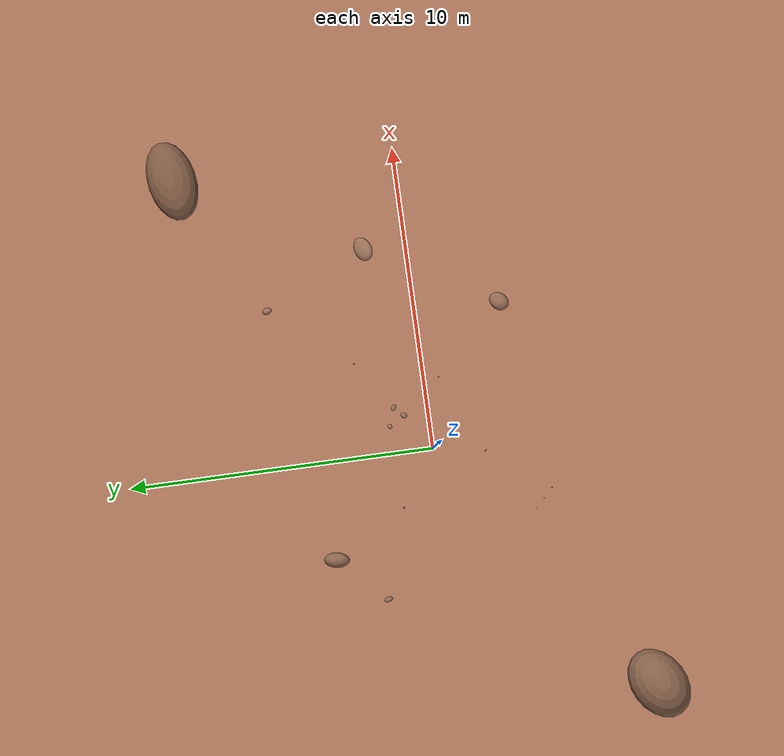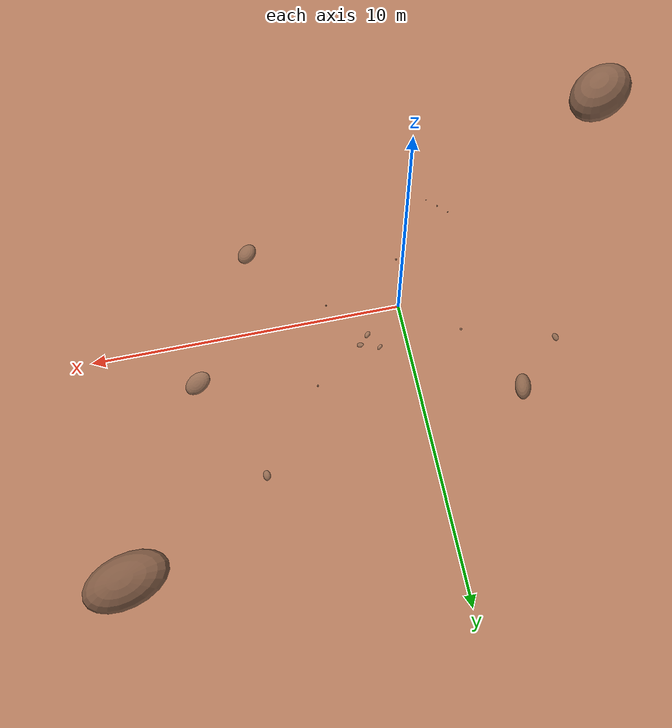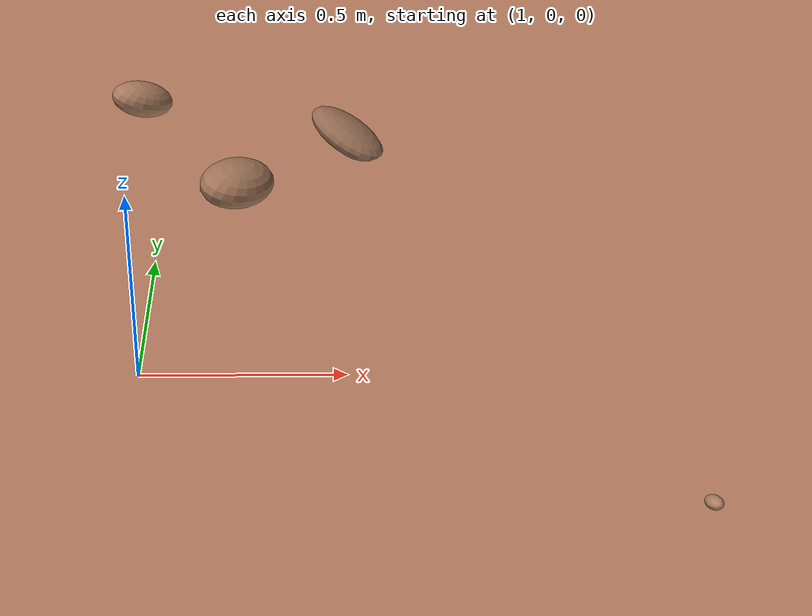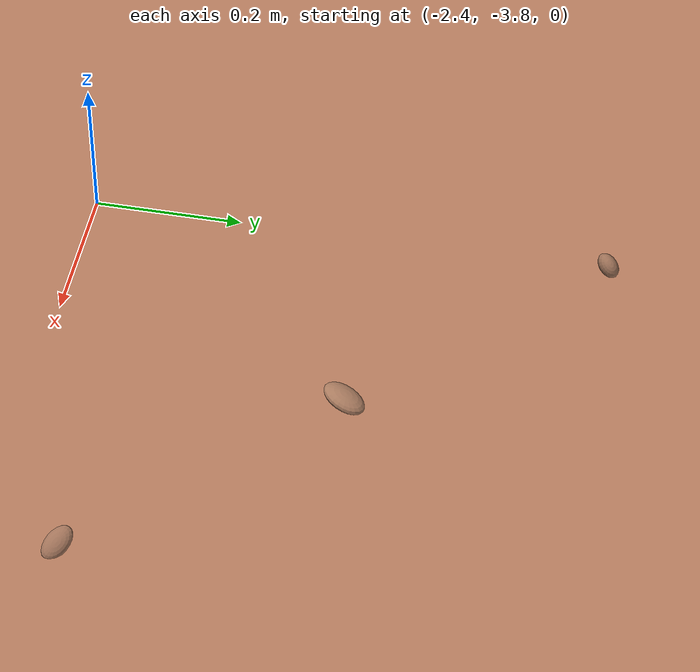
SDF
<?xml version="1.0" ?>
<sdf version="1.8">
  <world name="realistic_mars_surface">

    <physics name="mars_physics" type="ignored">
      <max_step_size>0.001</max_step_size>
      <real_time_factor>1.0</real_time_factor>
    </physics>

    <plugin filename="libignition-gazebo-physics-system.so" name="ignition::gazebo::systems::Physics">
    </plugin>
    <plugin filename="libignition-gazebo-user-commands-system.so" name="ignition::gazebo::systems::UserCommands">
    </plugin>
    <plugin filename="libignition-gazebo-scene-broadcaster-system.so" name="ignition::gazebo::systems::SceneBroadcaster">
    </plugin>
    <plugin filename="libignition-gazebo-sensors-system.so" name="ignition::gazebo::systems::Sensors">
      <render_engine>ogre2</render_engine>
    </plugin>

    <!-- Mars gravity -->
    <gravity>0 0 -3.71</gravity>

    <!-- Mars atmosphere -->
    <scene>
      <ambient>0.45 0.35 0.25 1.0</ambient>
      <background>0.9 0.65 0.4 1.0</background>
      <shadows>true</shadows>
      <fog>
        <color>0.95 0.7 0.45 1.0</color>
        <type>linear</type>
        <start>15</start>
        <end>200</end>
        <density>0.03</density>
      </fog>
    </scene>

    <!-- Mars sun -->
    <light type="directional" name="mars_sun">
      <cast_shadows>true</cast_shadows>
      <pose>80 40 60 0 0 0</pose>
      <diffuse>0.95 0.75 0.55 1</diffuse>
      <specular>0.4 0.3 0.2 1</specular>
      <direction>-0.5 -0.3 -0.8</direction>
    </light>

    <!-- Mars terrain base -->
    <model name="mars_surface">
      <static>true</static>
      <link name="surface_link">
        <collision name="surface_collision">
          <geometry>
            <plane>
              <normal>0 0 1</normal>
              <size>300 300</size>
            </plane>
          </geometry>
          <surface>
            <friction>
              <ode>
                <mu>0.9</mu>
                <mu2>0.9</mu2>
              </ode>
            </friction>
          </surface>
        </collision>
        <visual name="surface_visual">
          <geometry>
            <plane>
              <normal>0 0 1</normal>
              <size>300 300</size>
            </plane>
          </geometry>
          <material>
            <ambient>0.6 0.42 0.32 1</ambient>
            <diffuse>0.7 0.48 0.36 1</diffuse>
            <specular>0.02 0.02 0.02 1</specular>
          </material>
        </visual>
      </link>
    </model>

    <!-- Realistic rock field using mesh-like shapes -->
    <!-- Small weathered rocks cluster 1 -->
    <model name="rock_cluster_1">
      <static>true</static>

      <!-- Irregular small rock 1 -->
      <link name="small_rock_1a">
        <pose>1.2 0.8 0.06 0.3 0.2 0.8</pose>
        <collision name="small_rock_1a_collision">
          <geometry>
            <ellipsoid>
              <radii>0.12 0.08 0.06</radii>
            </ellipsoid>
          </geometry>
        </collision>
        <visual name="small_rock_1a_visual">
          <geometry>
            <ellipsoid>
              <radii>0.12 0.08 0.06</radii>
            </ellipsoid>
          </geometry>
          <material>
            <ambient>0.52 0.38 0.28 1</ambient>
            <diffuse>0.62 0.45 0.34 1</diffuse>
            <specular>0.05 0.05 0.05 1</specular>
          </material>
        </visual>
      </link>

      <link name="small_rock_1b">
        <pose>1.5 1.1 0.04 0.5 0.1 1.2</pose>
        <collision name="small_rock_1b_collision">
          <geometry>
            <ellipsoid>
              <radii>0.08 0.12 0.04</radii>
            </ellipsoid>
          </geometry>
        </collision>
        <visual name="small_rock_1b_visual">
          <geometry>
            <ellipsoid>
              <radii>0.08 0.12 0.04</radii>
            </ellipsoid>
          </geometry>
          <material>
            <ambient>0.48 0.35 0.26 1</ambient>
            <diffuse>0.58 0.42 0.32 1</diffuse>
            <specular>0.04 0.04 0.04 1</specular>
          </material>
        </visual>
      </link>

      <link name="small_rock_1c">
        <pose>0.9 1.3 0.05 0.2 0.4 0.6</pose>
        <collision name="small_rock_1c_collision">
          <geometry>
            <ellipsoid>
              <radii>0.10 0.06 0.05</radii>
            </ellipsoid>
          </geometry>
        </collision>
        <visual name="small_rock_1c_visual">
          <geometry>
            <ellipsoid>
              <radii>0.10 0.06 0.05</radii>
            </ellipsoid>
          </geometry>
          <material>
            <ambient>0.55 0.40 0.30 1</ambient>
            <diffuse>0.65 0.47 0.36 1</diffuse>
            <specular>0.06 0.06 0.06 1</specular>
          </material>
        </visual>
      </link>
    </model>

    <!-- Scattered pebble field -->
    <model name="pebble_field_1">
      <static>true</static>

      <!-- Tiny pebbles -->
      <link name="pebble_1">
        <pose>2.3 -0.5 0.015 0.1 0.3 1.8</pose>
        <collision name="pebble_1_collision">
          <geometry>
            <ellipsoid>
              <radii>0.03 0.02 0.015</radii>
            </ellipsoid>
          </geometry>
        </collision>
        <visual name="pebble_1_visual">
          <geometry>
            <ellipsoid>
              <radii>0.03 0.02 0.015</radii>
            </ellipsoid>
          </geometry>
          <material>
            <ambient>0.58 0.42 0.32 1</ambient>
            <diffuse>0.68 0.50 0.38 1</diffuse>
          </material>
        </visual>
      </link>

      <link name="pebble_2">
        <pose>-1.8 1.2 0.02 0.4 0.1 2.3</pose>
        <collision name="pebble_2_collision">
          <geometry>
            <ellipsoid>
              <radii>0.04 0.03 0.02</radii>
            </ellipsoid>
          </geometry>
        </collision>
        <visual name="pebble_2_visual">
          <geometry>
            <ellipsoid>
              <radii>0.04 0.03 0.02</radii>
            </ellipsoid>
          </geometry>
          <material>
            <ambient>0.50 0.36 0.27 1</ambient>
            <diffuse>0.60 0.43 0.33 1</diffuse>
          </material>
        </visual>
      </link>

      <link name="pebble_3">
        <pose>-0.3 -1.7 0.012 0.2 0.5 0.9</pose>
        <collision name="pebble_3_collision">
          <geometry>
            <ellipsoid>
              <radii>0.025 0.04 0.012</radii>
            </ellipsoid>
          </geometry>
        </collision>
        <visual name="pebble_3_visual">
          <geometry>
            <ellipsoid>
              <radii>0.025 0.04 0.012</radii>
            </ellipsoid>
          </geometry>
          <material>
            <ambient>0.54 0.39 0.29 1</ambient>
            <diffuse>0.64 0.46 0.35 1</diffuse>
          </material>
        </visual>
      </link>

      <link name="pebble_4">
        <pose>3.1 2.2 0.018 0.6 0.2 1.5</pose>
        <collision name="pebble_4_collision">
          <geometry>
            <ellipsoid>
              <radii>0.035 0.025 0.018</radii>
            </ellipsoid>
          </geometry>
        </collision>
        <visual name="pebble_4_visual">
          <geometry>
            <ellipsoid>
              <radii>0.035 0.025 0.018</radii>
            </ellipsoid>
          </geometry>
          <material>
            <ambient>0.52 0.37 0.28 1</ambient>
            <diffuse>0.62 0.44 0.34 1</diffuse>
          </material>
        </visual>
      </link>
    </model>

    <!-- Medium weathered rocks -->
    <model name="medium_rocks_natural">
      <static>true</static>

      <link name="med_rock_1">
        <pose>4.5 -2.8 0.18 0.15 0.25 0.7</pose>
        <collision name="med_rock_1_collision">
          <geometry>
            <ellipsoid>
              <radii>0.35 0.28 0.18</radii>
            </ellipsoid>
          </geometry>
        </collision>
        <visual name="med_rock_1_visual">
          <geometry>
            <ellipsoid>
              <radii>0.35 0.28 0.18</radii>
            </ellipsoid>
          </geometry>
          <material>
            <ambient>0.47 0.34 0.25 1</ambient>
            <diffuse>0.57 0.41 0.31 1</diffuse>
            <specular>0.08 0.08 0.08 1</specular>
          </material>
        </visual>
      </link>

      <link name="med_rock_2">
        <pose>-3.2 3.6 0.22 0.3 0.1 1.4</pose>
        <collision name="med_rock_2_collision">
          <geometry>
            <ellipsoid>
              <radii>0.42 0.25 0.22</radii>
            </ellipsoid>
          </geometry>
        </collision>
        <visual name="med_rock_2_visual">
          <geometry>
            <ellipsoid>
              <radii>0.42 0.25 0.22</radii>
            </ellipsoid>
          </geometry>
          <material>
            <ambient>0.44 0.32 0.23 1</ambient>
            <diffuse>0.54 0.39 0.29 1</diffuse>
            <specular>0.07 0.07 0.07 1</specular>
          </material>
        </visual>
      </link>

      <link name="med_rock_3">
        <pose>6.8 1.4 0.15 0.4 0.3 2.1</pose>
        <collision name="med_rock_3_collision">
          <geometry>
            <ellipsoid>
              <radii>0.30 0.45 0.15</radii>
            </ellipsoid>
          </geometry>
        </collision>
        <visual name="med_rock_3_visual">
          <geometry>
            <ellipsoid>
              <radii>0.30 0.45 0.15</radii>
            </ellipsoid>
          </geometry>
          <material>
            <ambient>0.49 0.36 0.27 1</ambient>
            <diffuse>0.59 0.43 0.33 1</diffuse>
            <specular>0.09 0.09 0.09 1</specular>
          </material>
        </visual>
      </link>
    </model>

    <!-- Large weathered boulders -->
    <model name="large_weathered_boulders">
      <static>true</static>

      <link name="large_boulder_1">
        <pose>-8.5 -6.2 0.8 0.1 0.2 0.5</pose>
        <collision name="large_boulder_1_collision">
          <geometry>
            <ellipsoid>
              <radii>1.2 0.9 0.8</radii>
            </ellipsoid>
          </geometry>
        </collision>
        <visual name="large_boulder_1_visual">
          <geometry>
            <ellipsoid>
              <radii>1.2 0.9 0.8</radii>
            </ellipsoid>
          </geometry>
          <material>
            <ambient>0.42 0.30 0.22 1</ambient>
            <diffuse>0.52 0.37 0.28 1</diffuse>
            <specular>0.12 0.12 0.12 1</specular>
          </material>
        </visual>
      </link>

      <link name="large_boulder_2">
        <pose>9.8 7.3 0.6 0.2 0.1 1.8</pose>
        <collision name="large_boulder_2_collision">
          <geometry>
            <ellipsoid>
              <radii>0.8 1.4 0.6</radii>
            </ellipsoid>
          </geometry>
        </collision>
        <visual name="large_boulder_2_visual">
          <geometry>
            <ellipsoid>
              <radii>0.8 1.4 0.6</radii>
            </ellipsoid>
          </geometry>
          <material>
            <ambient>0.40 0.28 0.20 1</ambient>
            <diffuse>0.50 0.35 0.26 1</diffuse>
            <specular>0.11 0.11 0.11 1</specular>
          </material>
        </visual>
      </link>
    </model>

    <!-- Dense pebble areas -->
    <model name="dense_pebble_area_1">
      <static>true</static>

      <link name="dpeb_1">
        <pose>-2.1 -3.4 0.01 0.3 0.1 2.8</pose>
        <collision name="dpeb_1_collision">
          <geometry>
            <ellipsoid>
              <radii>0.02 0.03 0.01</radii>
            </ellipsoid>
          </geometry>
        </collision>
        <visual name="dpeb_1_visual">
          <geometry>
            <ellipsoid>
              <radii>0.02 0.03 0.01</radii>
            </ellipsoid>
          </geometry>
          <material>
            <ambient>0.56 0.41 0.31 1</ambient>
            <diffuse>0.66 0.48 0.37 1</diffuse>
          </material>
        </visual>
      </link>

      <link name="dpeb_2">
        <pose>-1.8 -3.7 0.008 0.5 0.4 1.2</pose>
        <collision name="dpeb_2_collision">
          <geometry>
            <ellipsoid>
              <radii>0.015 0.025 0.008</radii>
            </ellipsoid>
          </geometry>
        </collision>
        <visual name="dpeb_2_visual">
          <geometry>
            <ellipsoid>
              <radii>0.015 0.025 0.008</radii>
            </ellipsoid>
          </geometry>
          <material>
            <ambient>0.53 0.38 0.29 1</ambient>
            <diffuse>0.63 0.45 0.35 1</diffuse>
          </material>
        </visual>
      </link>

      <link name="dpeb_3">
        <pose>-2.4 -3.1 0.012 0.2 0.6 0.9</pose>
        <collision name="dpeb_3_collision">
          <geometry>
            <ellipsoid>
              <radii>0.018 0.012 0.012</radii>
            </ellipsoid>
          </geometry>
        </collision>
        <visual name="dpeb_3_visual">
          <geometry>
            <ellipsoid>
              <radii>0.018 0.012 0.012</radii>
            </ellipsoid>
          </geometry>
          <material>
            <ambient>0.51 0.37 0.28 1</ambient>
            <diffuse>0.61 0.44 0.34 1</diffuse>
          </material>
        </visual>
      </link>
    </model>

    <!-- More natural rock scattering -->
    <model name="natural_scatter_1">
      <static>true</static>

      <link name="nat_rock_1">
        <pose>5.2 4.8 0.08 0.4 0.2 1.6</pose>
        <collision name="nat_rock_1_collision">
          <geometry>
            <ellipsoid>
              <radii>0.16 0.12 0.08</radii>
            </ellipsoid>
          </geometry>
        </collision>
        <visual name="nat_rock_1_visual">
          <geometry>
            <ellipsoid>
              <radii>0.16 0.12 0.08</radii>
            </ellipsoid>
          </geometry>
          <material>
            <ambient>0.48 0.35 0.26 1</ambient>
            <diffuse>0.58 0.42 0.32 1</diffuse>
            <specular>0.06 0.06 0.06 1</specular>
          </material>
        </visual>
      </link>

      <link name="nat_rock_2">
        <pose>-4.7 2.1 0.05 0.1 0.5 0.3</pose>
        <collision name="nat_rock_2_collision">
          <geometry>
            <ellipsoid>
              <radii>0.09 0.14 0.05</radii>
            </ellipsoid>
          </geometry>
        </collision>
        <visual name="nat_rock_2_visual">
          <geometry>
            <ellipsoid>
              <radii>0.09 0.14 0.05</radii>
            </ellipsoid>
          </geometry>
          <material>
            <ambient>0.45 0.33 0.24 1</ambient>
            <diffuse>0.55 0.40 0.30 1</diffuse>
            <specular>0.05 0.05 0.05 1</specular>
          </material>
        </visual>
      </link>
    </model>

  </world>
</sdf>
